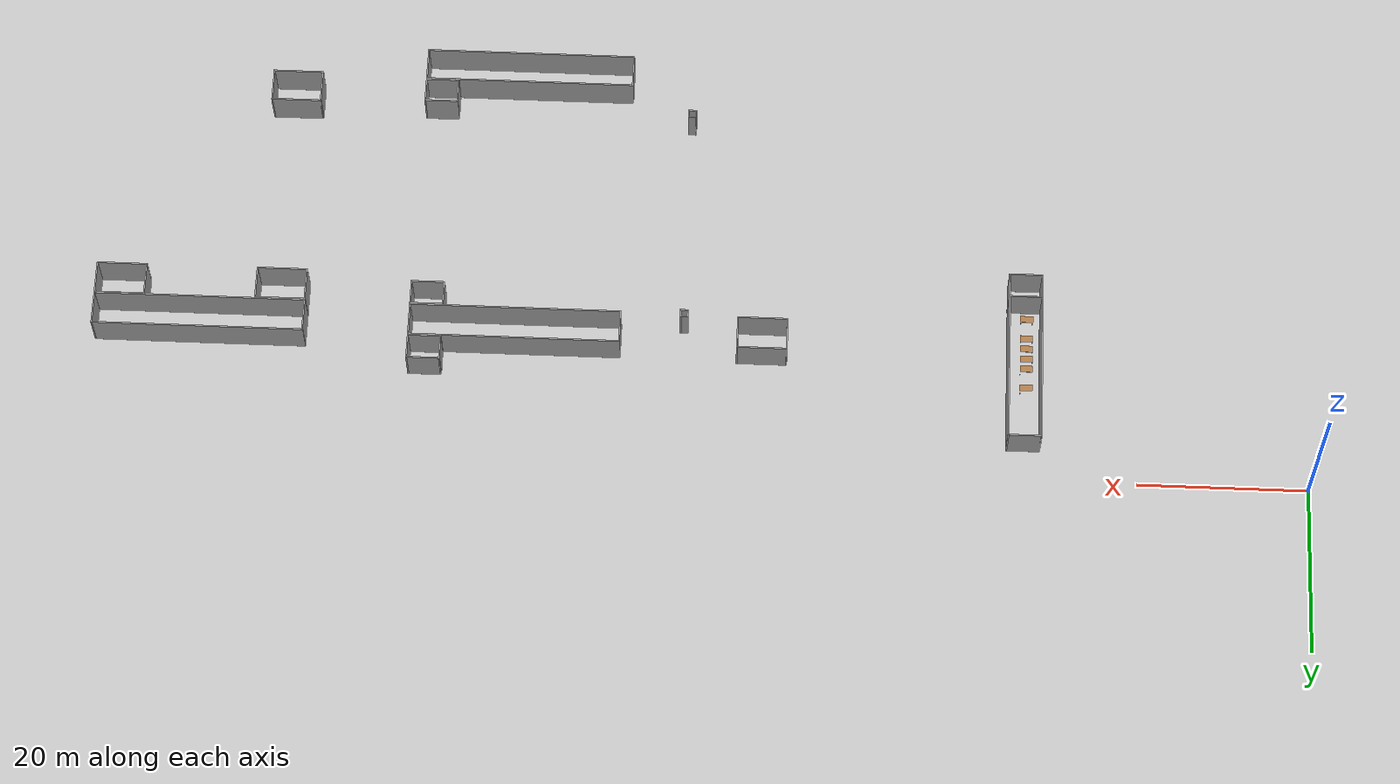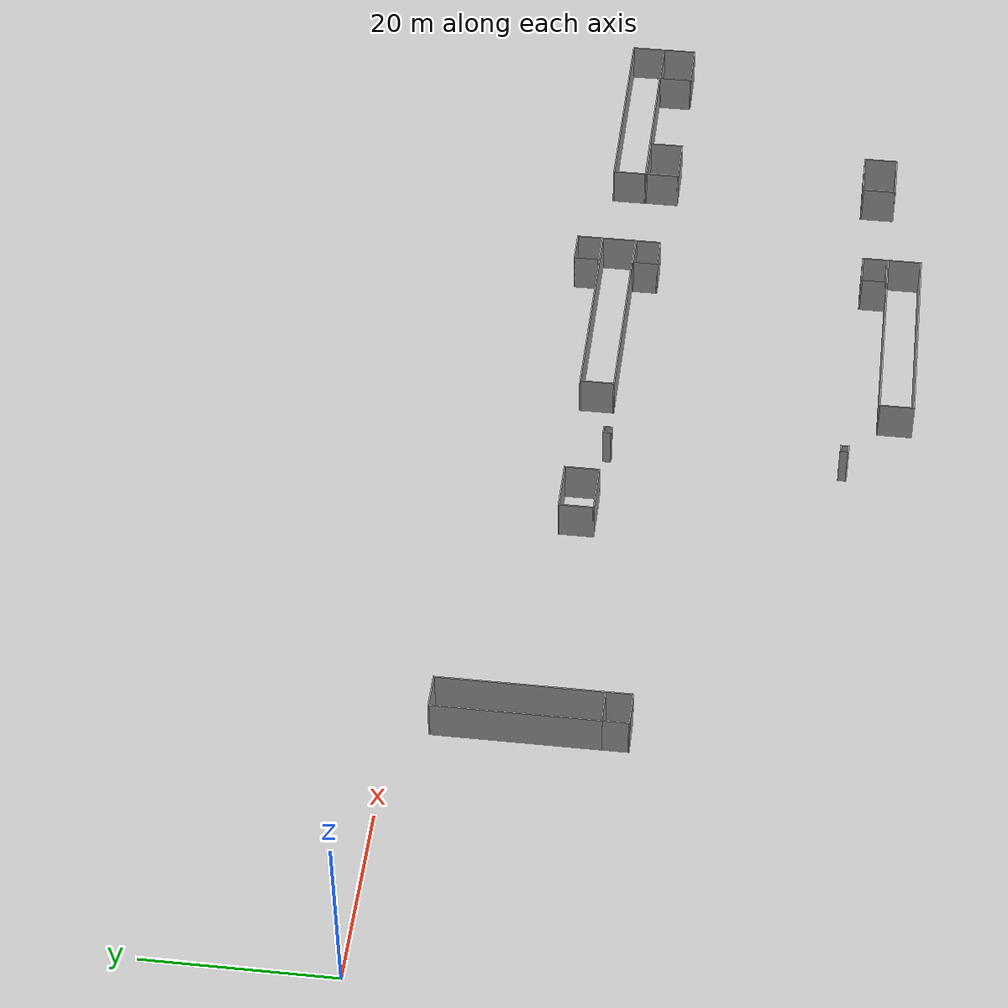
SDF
<sdf version="1.6">
 <world name="default">
  <model name="ground_plane">
   <static>1</static>
   <link name="link">
    <collision name="collision">
     <geometry><plane><normal>0 0 1</normal><size>320 320</size></plane></geometry>
     <surface>
      <contact><collide_bitmask>65535</collide_bitmask></contact>
      <friction><ode><mu>100</mu><mu2>50</mu2></ode></friction>
     </surface>
    </collision>
    <visual name="visual">
     <cast_shadows>0</cast_shadows>
     <geometry><plane><normal>0 0 1</normal><size>320 320</size></plane></geometry>
     <material>
      <script><uri>file://media/materials/scripts/gazebo.material</uri><name>Gazebo/Grey</name></script>
     </material>
    </visual>
   </link>
  </model>
  <model name="base3x4_25">
   <pose>33.3857 -23.2371 0 0 -0 0</pose>
   <link name="Wall_18">
    <collision name="Wall_18_Collision">
     <geometry><box><size>3 0.15 6.555</size></box></geometry>
     <pose>0 0 1.25 0 -0 0</pose>
    </collision>
    <visual name="Wall_18_Visual">
     <pose>0 0 1.25 0 -0 0</pose>
     <geometry><box><size>3 0.15 6.555</size></box></geometry>
     <material>
      <script><uri>file://media/materials/scripts/gazebo.material</uri><name>Gazebo/Grey</name></script>
      <ambient>1 1 1 1</ambient>
     </material>
     <meta><layer>0</layer></meta>
    </visual>
    <pose>-1.925 -0 0 0 -0 -1.5708</pose>
   </link>
   <link name="Wall_19">
    <collision name="Wall_19_Collision">
     <geometry><box><size>4 0.15 6.555</size></box></geometry>
     <pose>0 0 1.25 0 -0 0</pose>
    </collision>
    <visual name="Wall_19_Visual">
     <pose>0 0 1.25 0 -0 0</pose>
     <geometry><box><size>4 0.15 6.555</size></box></geometry>
     <material>
      <script><uri>file://media/materials/scripts/gazebo.material</uri><name>Gazebo/Grey</name></script>
      <ambient>1 1 1 1</ambient>
     </material>
     <meta><layer>0</layer></meta>
    </visual>
    <pose>-0 -1.425 0 0 -0 0</pose>
   </link>
   <link name="Wall_20">
    <collision name="Wall_20_Collision">
     <geometry><box><size>3 0.15 6.555</size></box></geometry>
     <pose>0 0 1.25 0 -0 0</pose>
    </collision>
    <visual name="Wall_20_Visual">
     <pose>0 0 1.25 0 -0 0</pose>
     <geometry><box><size>3 0.15 6.555</size></box></geometry>
     <material>
      <script><uri>file://media/materials/scripts/gazebo.material</uri><name>Gazebo/Grey</name></script>
      <ambient>1 1 1 1</ambient>
     </material>
     <meta><layer>0</layer></meta>
    </visual>
    <pose>1.925 -0 0 0 -0 1.5708</pose>
   </link>
   <link name="Wall_21">
    <collision name="Wall_21_Collision">
     <geometry><box><size>4 0.15 6.555</size></box></geometry>
     <pose>0 0 1.25 0 -0 0</pose>
    </collision>
    <visual name="Wall_21_Visual">
     <pose>0 0 1.25 0 -0 0</pose>
     <geometry><box><size>4 0.15 6.555</size></box></geometry>
     <material>
      <script><uri>file://media/materials/scripts/gazebo.material</uri><name>Gazebo/Grey</name></script>
      <ambient>1 1 1 1</ambient>
     </material>
     <meta><layer>0</layer></meta>
    </visual>
    <pose>-0 1.425 0 0 -0 3.14159</pose>
   </link>
   <static>1</static>
  </model>
  <model name="base18x4_5">
   <pose>33.3746 -12.8976 0 0 -0 0</pose>
   <link name="Wall_6">
    <collision name="Wall_6_Collision">
     <geometry><box><size>18 0.15 6.555</size></box></geometry>
     <pose>0 0 1.25 0 -0 0</pose>
    </collision>
    <visual name="Wall_6_Visual">
     <pose>0 0 1.25 0 -0 0</pose>
     <geometry><box><size>18 0.15 6.555</size></box></geometry>
     <material>
      <script><uri>file://media/materials/scripts/gazebo.material</uri><name>Gazebo/Grey</name></script>
      <ambient>1 1 1 1</ambient>
     </material>
     <meta><layer>0</layer></meta>
    </visual>
    <pose>-1.925 0 0 0 -0 -1.5708</pose>
   </link>
   <link name="Wall_7">
    <collision name="Wall_7_Collision">
     <geometry><box><size>4 0.15 6.555</size></box></geometry>
     <pose>0 0 1.25 0 -0 0</pose>
    </collision>
    <visual name="Wall_7_Visual">
     <pose>0 0 1.25 0 -0 0</pose>
     <geometry><box><size>4 0.15 6.555</size></box></geometry>
     <material>
      <script><uri>file://media/materials/scripts/gazebo.material</uri><name>Gazebo/Grey</name></script>
      <ambient>1 1 1 1</ambient>
     </material>
     <meta><layer>0</layer></meta>
    </visual>
    <pose>0 -8.925 0 0 -0 0</pose>
   </link>
   <link name="Wall_8">
    <collision name="Wall_8_Collision">
     <geometry><box><size>18 0.15 6.555</size></box></geometry>
     <pose>0 0 1.25 0 -0 0</pose>
    </collision>
    <visual name="Wall_8_Visual">
     <pose>0 0 1.25 0 -0 0</pose>
     <geometry><box><size>18 0.15 6.555</size></box></geometry>
     <material>
      <script><uri>file://media/materials/scripts/gazebo.material</uri><name>Gazebo/Grey</name></script>
      <ambient>1 1 1 1</ambient>
     </material>
     <meta><layer>0</layer></meta>
    </visual>
    <pose>1.925 0 0 0 -0 1.5708</pose>
   </link>
   <link name="Wall_9">
    <collision name="Wall_9_Collision">
     <geometry><box><size>4 0.15 6.555</size></box></geometry>
     <pose>0 0 1.25 0 -0 0</pose>
    </collision>
    <visual name="Wall_9_Visual">
     <pose>0 0 1.25 0 -0 0</pose>
     <geometry><box><size>4 0.15 6.555</size></box></geometry>
     <material>
      <script><uri>file://media/materials/scripts/gazebo.material</uri><name>Gazebo/Grey</name></script>
      <ambient>1 1 1 1</ambient>
     </material>
     <meta><layer>0</layer></meta>
    </visual>
    <pose>0 8.925 0 0 -0 3.14159</pose>
   </link>
   <static>1</static>
  </model>
  <model name="table">
   <static>1</static>
   <link name="link">
    <collision name="surface">
     <pose>0 0 1 0 -0 0</pose>
     <geometry><box><size>1.5 0.8 0.03</size></box></geometry>
     <surface><friction><ode><mu>0.6</mu><mu2>0.6</mu2></ode></friction></surface>
    </collision>
    <visual name="visual1">
     <pose>0 0 1 0 -0 0</pose>
     <geometry><box><size>1.5 0.8 0.03</size></box></geometry>
     <material>
      <script><uri>file://media/materials/scripts/gazebo.material</uri><name>Gazebo/Wood</name></script>
     </material>
    </visual>
    <collision name="front_left_leg">
     <pose>0.68 0.38 0.5 0 -0 0</pose>
     <geometry><cylinder><radius>0.02</radius><length>1</length></cylinder></geometry>
    </collision>
    <visual name="front_left_leg">
     <pose>0.68 0.38 0.5 0 -0 0</pose>
     <geometry><cylinder><radius>0.02</radius><length>1</length></cylinder></geometry>
     <material>
      <script><uri>file://media/materials/scripts/gazebo.material</uri><name>Gazebo/Grey</name></script>
     </material>
    </visual>
    <collision name="front_right_leg">
     <pose>0.68 -0.38 0.5 0 -0 0</pose>
     <geometry><cylinder><radius>0.02</radius><length>1</length></cylinder></geometry>
    </collision>
    <visual name="front_right_leg">
     <pose>0.68 -0.38 0.5 0 -0 0</pose>
     <geometry><cylinder><radius>0.02</radius><length>1</length></cylinder></geometry>
     <material>
      <script><uri>file://media/materials/scripts/gazebo.material</uri><name>Gazebo/Grey</name></script>
     </material>
    </visual>
    <collision name="back_right_leg">
     <pose>-0.68 -0.38 0.5 0 -0 0</pose>
     <geometry><cylinder><radius>0.02</radius><length>1</length></cylinder></geometry>
    </collision>
    <visual name="back_right_leg">
     <pose>-0.68 -0.38 0.5 0 -0 0</pose>
     <geometry><cylinder><radius>0.02</radius><length>1</length></cylinder></geometry>
     <material>
      <script><uri>file://media/materials/scripts/gazebo.material</uri><name>Gazebo/Grey</name></script>
     </material>
    </visual>
    <collision name="back_left_leg">
     <pose>-0.68 0.38 0.5 0 -0 0</pose>
     <geometry><cylinder><radius>0.02</radius><length>1</length></cylinder></geometry>
    </collision>
    <visual name="back_left_leg">
     <pose>-0.68 0.38 0.5 0 -0 0</pose>
     <geometry><cylinder><radius>0.02</radius><length>1</length></cylinder></geometry>
     <material>
      <script><uri>file://media/materials/scripts/gazebo.material</uri><name>Gazebo/Grey</name></script>
     </material>
    </visual>
   </link>
   <pose>33.0718 -20.4788 0 0 -0 0</pose>
  </model>
  <model name="table_1">
   <static>1</static>
   <link name="link">
    <collision name="surface">
     <pose>0 0 1 0 -0 0</pose>
     <geometry><box><size>1.5 0.8 0.03</size></box></geometry>
     <surface><friction><ode><mu>0.6</mu><mu2>0.6</mu2></ode></friction></surface>
    </collision>
    <visual name="visual1">
     <pose>0 0 1 0 -0 0</pose>
     <geometry><box><size>1.5 0.8 0.03</size></box></geometry>
     <material>
      <script><uri>file://media/materials/scripts/gazebo.material</uri><name>Gazebo/Wood</name></script>
     </material>
    </visual>
    <collision name="front_left_leg">
     <pose>0.68 0.38 0.5 0 -0 0</pose>
     <geometry><cylinder><radius>0.02</radius><length>1</length></cylinder></geometry>
    </collision>
    <visual name="front_left_leg">
     <pose>0.68 0.38 0.5 0 -0 0</pose>
     <geometry><cylinder><radius>0.02</radius><length>1</length></cylinder></geometry>
     <material>
      <script><uri>file://media/materials/scripts/gazebo.material</uri><name>Gazebo/Grey</name></script>
     </material>
    </visual>
    <collision name="front_right_leg">
     <pose>0.68 -0.38 0.5 0 -0 0</pose>
     <geometry><cylinder><radius>0.02</radius><length>1</length></cylinder></geometry>
    </collision>
    <visual name="front_right_leg">
     <pose>0.68 -0.38 0.5 0 -0 0</pose>
     <geometry><cylinder><radius>0.02</radius><length>1</length></cylinder></geometry>
     <material>
      <script><uri>file://media/materials/scripts/gazebo.material</uri><name>Gazebo/Grey</name></script>
     </material>
    </visual>
    <collision name="back_right_leg">
     <pose>-0.68 -0.38 0.5 0 -0 0</pose>
     <geometry><cylinder><radius>0.02</radius><length>1</length></cylinder></geometry>
    </collision>
    <visual name="back_right_leg">
     <pose>-0.68 -0.38 0.5 0 -0 0</pose>
     <geometry><cylinder><radius>0.02</radius><length>1</length></cylinder></geometry>
     <material>
      <script><uri>file://media/materials/scripts/gazebo.material</uri><name>Gazebo/Grey</name></script>
     </material>
    </visual>
    <collision name="back_left_leg">
     <pose>-0.68 0.38 0.5 0 -0 0</pose>
     <geometry><cylinder><radius>0.02</radius><length>1</length></cylinder></geometry>
    </collision>
    <visual name="back_left_leg">
     <pose>-0.68 0.38 0.5 0 -0 0</pose>
     <geometry><cylinder><radius>0.02</radius><length>1</length></cylinder></geometry>
     <material>
      <script><uri>file://media/materials/scripts/gazebo.material</uri><name>Gazebo/Grey</name></script>
     </material>
    </visual>
   </link>
   <pose>33.0783 -17.9476 0 0 -0 0</pose>
  </model>
  <model name="table_2">
   <static>1</static>
   <link name="link">
    <collision name="surface">
     <pose>0 0 1 0 -0 0</pose>
     <geometry><box><size>1.5 0.8 0.03</size></box></geometry>
     <surface><friction><ode><mu>0.6</mu><mu2>0.6</mu2></ode></friction></surface>
    </collision>
    <visual name="visual1">
     <pose>0 0 1 0 -0 0</pose>
     <geometry><box><size>1.5 0.8 0.03</size></box></geometry>
     <material>
      <script><uri>file://media/materials/scripts/gazebo.material</uri><name>Gazebo/Wood</name></script>
     </material>
    </visual>
    <collision name="front_left_leg">
     <pose>0.68 0.38 0.5 0 -0 0</pose>
     <geometry><cylinder><radius>0.02</radius><length>1</length></cylinder></geometry>
    </collision>
    <visual name="front_left_leg">
     <pose>0.68 0.38 0.5 0 -0 0</pose>
     <geometry><cylinder><radius>0.02</radius><length>1</length></cylinder></geometry>
     <material>
      <script><uri>file://media/materials/scripts/gazebo.material</uri><name>Gazebo/Grey</name></script>
     </material>
    </visual>
    <collision name="front_right_leg">
     <pose>0.68 -0.38 0.5 0 -0 0</pose>
     <geometry><cylinder><radius>0.02</radius><length>1</length></cylinder></geometry>
    </collision>
    <visual name="front_right_leg">
     <pose>0.68 -0.38 0.5 0 -0 0</pose>
     <geometry><cylinder><radius>0.02</radius><length>1</length></cylinder></geometry>
     <material>
      <script><uri>file://media/materials/scripts/gazebo.material</uri><name>Gazebo/Grey</name></script>
     </material>
    </visual>
    <collision name="back_right_leg">
     <pose>-0.68 -0.38 0.5 0 -0 0</pose>
     <geometry><cylinder><radius>0.02</radius><length>1</length></cylinder></geometry>
    </collision>
    <visual name="back_right_leg">
     <pose>-0.68 -0.38 0.5 0 -0 0</pose>
     <geometry><cylinder><radius>0.02</radius><length>1</length></cylinder></geometry>
     <material>
      <script><uri>file://media/materials/scripts/gazebo.material</uri><name>Gazebo/Grey</name></script>
     </material>
    </visual>
    <collision name="back_left_leg">
     <pose>-0.68 0.38 0.5 0 -0 0</pose>
     <geometry><cylinder><radius>0.02</radius><length>1</length></cylinder></geometry>
    </collision>
    <visual name="back_left_leg">
     <pose>-0.68 0.38 0.5 0 -0 0</pose>
     <geometry><cylinder><radius>0.02</radius><length>1</length></cylinder></geometry>
     <material>
      <script><uri>file://media/materials/scripts/gazebo.material</uri><name>Gazebo/Grey</name></script>
     </material>
    </visual>
   </link>
   <pose>33.0811 -16.621 0 0 -0 0</pose>
  </model>
  <model name="table_3">
   <static>1</static>
   <link name="link">
    <collision name="surface">
     <pose>0 0 1 0 -0 0</pose>
     <geometry><box><size>1.5 0.8 0.03</size></box></geometry>
     <surface><friction><ode><mu>0.6</mu><mu2>0.6</mu2></ode></friction></surface>
    </collision>
    <visual name="visual1">
     <pose>0 0 1 0 -0 0</pose>
     <geometry><box><size>1.5 0.8 0.03</size></box></geometry>
     <material>
      <script><uri>file://media/materials/scripts/gazebo.material</uri><name>Gazebo/Wood</name></script>
     </material>
    </visual>
    <collision name="front_left_leg">
     <pose>0.68 0.38 0.5 0 -0 0</pose>
     <geometry><cylinder><radius>0.02</radius><length>1</length></cylinder></geometry>
    </collision>
    <visual name="front_left_leg">
     <pose>0.68 0.38 0.5 0 -0 0</pose>
     <geometry><cylinder><radius>0.02</radius><length>1</length></cylinder></geometry>
     <material>
      <script><uri>file://media/materials/scripts/gazebo.material</uri><name>Gazebo/Grey</name></script>
     </material>
    </visual>
    <collision name="front_right_leg">
     <pose>0.68 -0.38 0.5 0 -0 0</pose>
     <geometry><cylinder><radius>0.02</radius><length>1</length></cylinder></geometry>
    </collision>
    <visual name="front_right_leg">
     <pose>0.68 -0.38 0.5 0 -0 0</pose>
     <geometry><cylinder><radius>0.02</radius><length>1</length></cylinder></geometry>
     <material>
      <script><uri>file://media/materials/scripts/gazebo.material</uri><name>Gazebo/Grey</name></script>
     </material>
    </visual>
    <collision name="back_right_leg">
     <pose>-0.68 -0.38 0.5 0 -0 0</pose>
     <geometry><cylinder><radius>0.02</radius><length>1</length></cylinder></geometry>
    </collision>
    <visual name="back_right_leg">
     <pose>-0.68 -0.38 0.5 0 -0 0</pose>
     <geometry><cylinder><radius>0.02</radius><length>1</length></cylinder></geometry>
     <material>
      <script><uri>file://media/materials/scripts/gazebo.material</uri><name>Gazebo/Grey</name></script>
     </material>
    </visual>
    <collision name="back_left_leg">
     <pose>-0.68 0.38 0.5 0 -0 0</pose>
     <geometry><cylinder><radius>0.02</radius><length>1</length></cylinder></geometry>
    </collision>
    <visual name="back_left_leg">
     <pose>-0.68 0.38 0.5 0 -0 0</pose>
     <geometry><cylinder><radius>0.02</radius><length>1</length></cylinder></geometry>
     <material>
      <script><uri>file://media/materials/scripts/gazebo.material</uri><name>Gazebo/Grey</name></script>
     </material>
    </visual>
   </link>
   <pose>33.0661 -15.3115 0 0 -0 0</pose>
  </model>
  <model name="table_4">
   <static>1</static>
   <link name="link">
    <collision name="surface">
     <pose>0 0 1 0 -0 0</pose>
     <geometry><box><size>1.5 0.8 0.03</size></box></geometry>
     <surface><friction><ode><mu>0.6</mu><mu2>0.6</mu2></ode></friction></surface>
    </collision>
    <visual name="visual1">
     <pose>0 0 1 0 -0 0</pose>
     <geometry><box><size>1.5 0.8 0.03</size></box></geometry>
     <material>
      <script><uri>file://media/materials/scripts/gazebo.material</uri><name>Gazebo/Wood</name></script>
     </material>
    </visual>
    <collision name="front_left_leg">
     <pose>0.68 0.38 0.5 0 -0 0</pose>
     <geometry><cylinder><radius>0.02</radius><length>1</length></cylinder></geometry>
    </collision>
    <visual name="front_left_leg">
     <pose>0.68 0.38 0.5 0 -0 0</pose>
     <geometry><cylinder><radius>0.02</radius><length>1</length></cylinder></geometry>
     <material>
      <script><uri>file://media/materials/scripts/gazebo.material</uri><name>Gazebo/Grey</name></script>
     </material>
    </visual>
    <collision name="front_right_leg">
     <pose>0.68 -0.38 0.5 0 -0 0</pose>
     <geometry><cylinder><radius>0.02</radius><length>1</length></cylinder></geometry>
    </collision>
    <visual name="front_right_leg">
     <pose>0.68 -0.38 0.5 0 -0 0</pose>
     <geometry><cylinder><radius>0.02</radius><length>1</length></cylinder></geometry>
     <material>
      <script><uri>file://media/materials/scripts/gazebo.material</uri><name>Gazebo/Grey</name></script>
     </material>
    </visual>
    <collision name="back_right_leg">
     <pose>-0.68 -0.38 0.5 0 -0 0</pose>
     <geometry><cylinder><radius>0.02</radius><length>1</length></cylinder></geometry>
    </collision>
    <visual name="back_right_leg">
     <pose>-0.68 -0.38 0.5 0 -0 0</pose>
     <geometry><cylinder><radius>0.02</radius><length>1</length></cylinder></geometry>
     <material>
      <script><uri>file://media/materials/scripts/gazebo.material</uri><name>Gazebo/Grey</name></script>
     </material>
    </visual>
    <collision name="back_left_leg">
     <pose>-0.68 0.38 0.5 0 -0 0</pose>
     <geometry><cylinder><radius>0.02</radius><length>1</length></cylinder></geometry>
    </collision>
    <visual name="back_left_leg">
     <pose>-0.68 0.38 0.5 0 -0 0</pose>
     <geometry><cylinder><radius>0.02</radius><length>1</length></cylinder></geometry>
     <material>
      <script><uri>file://media/materials/scripts/gazebo.material</uri><name>Gazebo/Grey</name></script>
     </material>
    </visual>
   </link>
   <pose>33.068 -14.0197 0 0 -0 0</pose>
  </model>
  <model name="table_6">
   <static>1</static>
   <link name="link">
    <collision name="surface">
     <pose>0 0 1 0 -0 0</pose>
     <geometry><box><size>1.5 0.8 0.03</size></box></geometry>
     <surface><friction><ode><mu>0.6</mu><mu2>0.6</mu2></ode></friction></surface>
    </collision>
    <visual name="visual1">
     <pose>0 0 1 0 -0 0</pose>
     <geometry><box><size>1.5 0.8 0.03</size></box></geometry>
     <material>
      <script><uri>file://media/materials/scripts/gazebo.material</uri><name>Gazebo/Wood</name></script>
     </material>
    </visual>
    <collision name="front_left_leg">
     <pose>0.68 0.38 0.5 0 -0 0</pose>
     <geometry><cylinder><radius>0.02</radius><length>1</length></cylinder></geometry>
    </collision>
    <visual name="front_left_leg">
     <pose>0.68 0.38 0.5 0 -0 0</pose>
     <geometry><cylinder><radius>0.02</radius><length>1</length></cylinder></geometry>
     <material>
      <script><uri>file://media/materials/scripts/gazebo.material</uri><name>Gazebo/Grey</name></script>
     </material>
    </visual>
    <collision name="front_right_leg">
     <pose>0.68 -0.38 0.5 0 -0 0</pose>
     <geometry><cylinder><radius>0.02</radius><length>1</length></cylinder></geometry>
    </collision>
    <visual name="front_right_leg">
     <pose>0.68 -0.38 0.5 0 -0 0</pose>
     <geometry><cylinder><radius>0.02</radius><length>1</length></cylinder></geometry>
     <material>
      <script><uri>file://media/materials/scripts/gazebo.material</uri><name>Gazebo/Grey</name></script>
     </material>
    </visual>
    <collision name="back_right_leg">
     <pose>-0.68 -0.38 0.5 0 -0 0</pose>
     <geometry><cylinder><radius>0.02</radius><length>1</length></cylinder></geometry>
    </collision>
    <visual name="back_right_leg">
     <pose>-0.68 -0.38 0.5 0 -0 0</pose>
     <geometry><cylinder><radius>0.02</radius><length>1</length></cylinder></geometry>
     <material>
      <script><uri>file://media/materials/scripts/gazebo.material</uri><name>Gazebo/Grey</name></script>
     </material>
    </visual>
    <collision name="back_left_leg">
     <pose>-0.68 0.38 0.5 0 -0 0</pose>
     <geometry><cylinder><radius>0.02</radius><length>1</length></cylinder></geometry>
    </collision>
    <visual name="back_left_leg">
     <pose>-0.68 0.38 0.5 0 -0 0</pose>
     <geometry><cylinder><radius>0.02</radius><length>1</length></cylinder></geometry>
     <material>
      <script><uri>file://media/materials/scripts/gazebo.material</uri><name>Gazebo/Grey</name></script>
     </material>
    </visual>
   </link>
   <pose>33.0586 -11.5759 0 0 -0 0</pose>
  </model>
  <model name="base4x25_6">
   <pose>130.864 -16.1277 0 0 -0 0</pose>
   <link name="Wall_11">
    <collision name="Wall_11_Collision">
     <geometry><box><size>4 0.15 6.555</size></box></geometry>
     <pose>0 0 1.25 0 -0 0</pose>
    </collision>
    <visual name="Wall_11_Visual">
     <pose>0 0 1.25 0 -0 0</pose>
     <geometry><box><size>4 0.15 6.555</size></box></geometry>
     <material>
      <script><uri>file://media/materials/scripts/gazebo.material</uri><name>Gazebo/Grey</name></script>
      <ambient>1 1 1 1</ambient>
     </material>
     <meta><layer>0</layer></meta>
    </visual>
    <pose>-12.425 0 0 0 -0 -1.5708</pose>
   </link>
   <link name="Wall_12">
    <collision name="Wall_12_Collision">
     <geometry><box><size>25 0.15 6.555</size></box></geometry>
     <pose>0 0 1.25 0 -0 0</pose>
    </collision>
    <visual name="Wall_12_Visual">
     <pose>0 0 1.25 0 -0 0</pose>
     <geometry><box><size>25 0.15 6.555</size></box></geometry>
     <material>
      <script><uri>file://media/materials/scripts/gazebo.material</uri><name>Gazebo/Grey</name></script>
      <ambient>1 1 1 1</ambient>
     </material>
     <meta><layer>0</layer></meta>
    </visual>
    <pose>0 -1.925 0 0 -0 0</pose>
   </link>
   <link name="Wall_13">
    <collision name="Wall_13_Collision">
     <geometry><box><size>4 0.15 6.555</size></box></geometry>
     <pose>0 0 1.25 0 -0 0</pose>
    </collision>
    <visual name="Wall_13_Visual">
     <pose>0 0 1.25 0 -0 0</pose>
     <geometry><box><size>4 0.15 6.555</size></box></geometry>
     <material>
      <script><uri>file://media/materials/scripts/gazebo.material</uri><name>Gazebo/Grey</name></script>
      <ambient>1 1 1 1</ambient>
     </material>
     <meta><layer>0</layer></meta>
    </visual>
    <pose>12.425 0 0 0 -0 1.5708</pose>
   </link>
   <link name="Wall_14">
    <collision name="Wall_14_Collision">
     <geometry><box><size>25 0.15 6.555</size></box></geometry>
     <pose>0 0 1.25 0 -0 0</pose>
    </collision>
    <visual name="Wall_14_Visual">
     <pose>0 0 1.25 0 -0 0</pose>
     <geometry><box><size>25 0.15 6.555</size></box></geometry>
     <material>
      <script><uri>file://media/materials/scripts/gazebo.material</uri><name>Gazebo/Grey</name></script>
      <ambient>1 1 1 1</ambient>
     </material>
     <meta><layer>0</layer></meta>
    </visual>
    <pose>0 1.925 0 0 -0 3.14159</pose>
   </link>
   <static>1</static>
  </model>
  <model name="base4x25_13">
   <pose>93.5449 -16.0739 0 0 -0 0</pose>
   <link name="Wall_11">
    <collision name="Wall_11_Collision">
     <geometry><box><size>4 0.15 6.555</size></box></geometry>
     <pose>0 0 1.25 0 -0 0</pose>
    </collision>
    <visual name="Wall_11_Visual">
     <pose>0 0 1.25 0 -0 0</pose>
     <geometry><box><size>4 0.15 6.555</size></box></geometry>
     <material>
      <script><uri>file://media/materials/scripts/gazebo.material</uri><name>Gazebo/Grey</name></script>
      <ambient>1 1 1 1</ambient>
     </material>
     <meta><layer>0</layer></meta>
    </visual>
    <pose>-12.425 0 0 0 -0 -1.5708</pose>
   </link>
   <link name="Wall_12">
    <collision name="Wall_12_Collision">
     <geometry><box><size>25 0.15 6.555</size></box></geometry>
     <pose>0 0 1.25 0 -0 0</pose>
    </collision>
    <visual name="Wall_12_Visual">
     <pose>0 0 1.25 0 -0 0</pose>
     <geometry><box><size>25 0.15 6.555</size></box></geometry>
     <material>
      <script><uri>file://media/materials/scripts/gazebo.material</uri><name>Gazebo/Grey</name></script>
      <ambient>1 1 1 1</ambient>
     </material>
     <meta><layer>0</layer></meta>
    </visual>
    <pose>0 -1.925 0 0 -0 0</pose>
   </link>
   <link name="Wall_13">
    <collision name="Wall_13_Collision">
     <geometry><box><size>4 0.15 6.555</size></box></geometry>
     <pose>0 0 1.25 0 -0 0</pose>
    </collision>
    <visual name="Wall_13_Visual">
     <pose>0 0 1.25 0 -0 0</pose>
     <geometry><box><size>4 0.15 6.555</size></box></geometry>
     <material>
      <script><uri>file://media/materials/scripts/gazebo.material</uri><name>Gazebo/Grey</name></script>
      <ambient>1 1 1 1</ambient>
     </material>
     <meta><layer>0</layer></meta>
    </visual>
    <pose>12.425 0 0 0 -0 1.5708</pose>
   </link>
   <link name="Wall_14">
    <collision name="Wall_14_Collision">
     <geometry><box><size>25 0.15 6.555</size></box></geometry>
     <pose>0 0 1.25 0 -0 0</pose>
    </collision>
    <visual name="Wall_14_Visual">
     <pose>0 0 1.25 0 -0 0</pose>
     <geometry><box><size>25 0.15 6.555</size></box></geometry>
     <material>
      <script><uri>file://media/materials/scripts/gazebo.material</uri><name>Gazebo/Grey</name></script>
      <ambient>1 1 1 1</ambient>
     </material>
     <meta><layer>0</layer></meta>
    </visual>
    <pose>0 1.925 0 0 -0 3.14159</pose>
   </link>
   <static>1</static>
  </model>
  <model name="base4x25_14">
   <pose>93.4868 -50.0545 0 0 -0 0</pose>
   <link name="Wall_11">
    <collision name="Wall_11_Collision">
     <geometry><box><size>4 0.15 6.555</size></box></geometry>
     <pose>0 0 1.25 0 -0 0</pose>
    </collision>
    <visual name="Wall_11_Visual">
     <pose>0 0 1.25 0 -0 0</pose>
     <geometry><box><size>4 0.15 6.555</size></box></geometry>
     <material>
      <script><uri>file://media/materials/scripts/gazebo.material</uri><name>Gazebo/Grey</name></script>
      <ambient>1 1 1 1</ambient>
     </material>
     <meta><layer>0</layer></meta>
    </visual>
    <pose>-12.425 0 0 0 -0 -1.5708</pose>
   </link>
   <link name="Wall_12">
    <collision name="Wall_12_Collision">
     <geometry><box><size>25 0.15 6.555</size></box></geometry>
     <pose>0 0 1.25 0 -0 0</pose>
    </collision>
    <visual name="Wall_12_Visual">
     <pose>0 0 1.25 0 -0 0</pose>
     <geometry><box><size>25 0.15 6.555</size></box></geometry>
     <material>
      <script><uri>file://media/materials/scripts/gazebo.material</uri><name>Gazebo/Grey</name></script>
      <ambient>1 1 1 1</ambient>
     </material>
     <meta><layer>0</layer></meta>
    </visual>
    <pose>0 -1.925 0 0 -0 0</pose>
   </link>
   <link name="Wall_13">
    <collision name="Wall_13_Collision">
     <geometry><box><size>4 0.15 6.555</size></box></geometry>
     <pose>0 0 1.25 0 -0 0</pose>
    </collision>
    <visual name="Wall_13_Visual">
     <pose>0 0 1.25 0 -0 0</pose>
     <geometry><box><size>4 0.15 6.555</size></box></geometry>
     <material>
      <script><uri>file://media/materials/scripts/gazebo.material</uri><name>Gazebo/Grey</name></script>
      <ambient>1 1 1 1</ambient>
     </material>
     <meta><layer>0</layer></meta>
    </visual>
    <pose>12.425 0 0 0 -0 1.5708</pose>
   </link>
   <link name="Wall_14">
    <collision name="Wall_14_Collision">
     <geometry><box><size>25 0.15 6.555</size></box></geometry>
     <pose>0 0 1.25 0 -0 0</pose>
    </collision>
    <visual name="Wall_14_Visual">
     <pose>0 0 1.25 0 -0 0</pose>
     <geometry><box><size>25 0.15 6.555</size></box></geometry>
     <material>
      <script><uri>file://media/materials/scripts/gazebo.material</uri><name>Gazebo/Grey</name></script>
      <ambient>1 1 1 1</ambient>
     </material>
     <meta><layer>0</layer></meta>
    </visual>
    <pose>0 1.925 0 0 -0 3.14159</pose>
   </link>
   <static>1</static>
  </model>
  <model name="base4x6_7_clone_3">
   <pose>64.335 -15.8734 0 0 -0 0</pose>
   <link name="Wall_23">
    <collision name="Wall_23_Collision">
     <geometry><box><size>4 0.15 6.555</size></box></geometry>
     <pose>0 0 1.25 0 -0 0</pose>
    </collision>
    <visual name="Wall_23_Visual">
     <pose>0 0 1.25 0 -0 0</pose>
     <geometry><box><size>4 0.15 6.555</size></box></geometry>
     <material>
      <script><uri>file://media/materials/scripts/gazebo.material</uri><name>Gazebo/Grey</name></script>
      <ambient>1 1 1 1</ambient>
     </material>
     <meta><layer>0</layer></meta>
    </visual>
    <pose>-2.925 0 0 0 -0 -1.5708</pose>
   </link>
   <link name="Wall_24">
    <collision name="Wall_24_Collision">
     <geometry><box><size>6 0.15 6.555</size></box></geometry>
     <pose>0 0 1.25 0 -0 0</pose>
    </collision>
    <visual name="Wall_24_Visual">
     <pose>0 0 1.25 0 -0 0</pose>
     <geometry><box><size>6 0.15 6.555</size></box></geometry>
     <material>
      <script><uri>file://media/materials/scripts/gazebo.material</uri><name>Gazebo/Grey</name></script>
      <ambient>1 1 1 1</ambient>
     </material>
     <meta><layer>0</layer></meta>
    </visual>
    <pose>-0 -1.925 0 0 -0 0</pose>
   </link>
   <link name="Wall_25">
    <collision name="Wall_25_Collision">
     <geometry><box><size>4 0.15 6.555</size></box></geometry>
     <pose>0 0 1.25 0 -0 0</pose>
    </collision>
    <visual name="Wall_25_Visual">
     <pose>0 0 1.25 0 -0 0</pose>
     <geometry><box><size>4 0.15 6.555</size></box></geometry>
     <material>
      <script><uri>file://media/materials/scripts/gazebo.material</uri><name>Gazebo/Grey</name></script>
      <ambient>1 1 1 1</ambient>
     </material>
     <meta><layer>0</layer></meta>
    </visual>
    <pose>2.925 0 0 0 -0 1.5708</pose>
   </link>
   <link name="Wall_26">
    <collision name="Wall_26_Collision">
     <geometry><box><size>6 0.15 6.555</size></box></geometry>
     <pose>0 0 1.25 0 -0 0</pose>
    </collision>
    <visual name="Wall_26_Visual">
     <pose>0 0 1.25 0 -0 0</pose>
     <geometry><box><size>6 0.15 6.555</size></box></geometry>
     <material>
      <script><uri>file://media/materials/scripts/gazebo.material</uri><name>Gazebo/Grey</name></script>
      <ambient>1 1 1 1</ambient>
     </material>
     <meta><layer>0</layer></meta>
    </visual>
    <pose>-0 1.925 0 0 -0 3.14159</pose>
   </link>
   <static>1</static>
  </model>
  <model name="box_1mx1m_clone_6">
   <pose>73.6131 -18.0544 0 0 -0 0</pose>
   <link name="Wall_10">
    <collision name="Wall_10_Collision">
     <geometry><box><size>1 0.15 6.555</size></box></geometry>
     <pose>0 0 1.25 0 -0 0</pose>
    </collision>
    <visual name="Wall_10_Visual">
     <pose>0 0 1.25 0 -0 0</pose>
     <geometry><box><size>1 0.15 6.555</size></box></geometry>
     <material>
      <script><uri>file://media/materials/scripts/gazebo.material</uri><name>Gazebo/Grey</name></script>
      <ambient>1 1 1 1</ambient>
     </material>
     <meta><layer>0</layer></meta>
    </visual>
    <pose>-0.425 0 0 0 -0 -1.5708</pose>
   </link>
   <link name="Wall_11">
    <collision name="Wall_11_Collision">
     <geometry><box><size>1 0.15 6.555</size></box></geometry>
     <pose>0 0 1.25 0 -0 0</pose>
    </collision>
    <visual name="Wall_11_Visual">
     <pose>0 0 1.25 0 -0 0</pose>
     <geometry><box><size>1 0.15 6.555</size></box></geometry>
     <material>
      <script><uri>file://media/materials/scripts/gazebo.material</uri><name>Gazebo/Grey</name></script>
      <ambient>1 1 1 1</ambient>
     </material>
     <meta><layer>0</layer></meta>
    </visual>
    <pose>0 -0.425 0 0 -0 0</pose>
   </link>
   <link name="Wall_12">
    <collision name="Wall_12_Collision">
     <geometry><box><size>1 0.15 6.555</size></box></geometry>
     <pose>0 0 1.25 0 -0 0</pose>
    </collision>
    <visual name="Wall_12_Visual">
     <pose>0 0 1.25 0 -0 0</pose>
     <geometry><box><size>1 0.15 6.555</size></box></geometry>
     <material>
      <script><uri>file://media/materials/scripts/gazebo.material</uri><name>Gazebo/Grey</name></script>
      <ambient>1 1 1 1</ambient>
     </material>
     <meta><layer>0</layer></meta>
    </visual>
    <pose>0.425 0 0 0 -0 1.5708</pose>
   </link>
   <link name="Wall_13">
    <collision name="Wall_13_Collision">
     <geometry><box><size>1 0.15 6.555</size></box></geometry>
     <pose>0 0 1.25 0 -0 0</pose>
    </collision>
    <visual name="Wall_13_Visual">
     <pose>0 0 1.25 0 -0 0</pose>
     <geometry><box><size>1 0.15 6.555</size></box></geometry>
     <material>
      <script><uri>file://media/materials/scripts/gazebo.material</uri><name>Gazebo/Grey</name></script>
      <ambient>1 1 1 1</ambient>
     </material>
     <meta><layer>0</layer></meta>
    </visual>
    <pose>0 0.425 0 0 -0 3.14159</pose>
   </link>
   <static>1</static>
  </model>
  <model name="box_1mx1m_clone_7">
   <pose>73.6905 -44.5319 0 0 -0 0</pose>
   <link name="Wall_10">
    <collision name="Wall_10_Collision">
     <geometry><box><size>1 0.15 6.555</size></box></geometry>
     <pose>0 0 1.25 0 -0 0</pose>
    </collision>
    <visual name="Wall_10_Visual">
     <pose>0 0 1.25 0 -0 0</pose>
     <geometry><box><size>1 0.15 6.555</size></box></geometry>
     <material>
      <script><uri>file://media/materials/scripts/gazebo.material</uri><name>Gazebo/Grey</name></script>
      <ambient>1 1 1 1</ambient>
     </material>
     <meta><layer>0</layer></meta>
    </visual>
    <pose>-0.425 0 0 0 -0 -1.5708</pose>
   </link>
   <link name="Wall_11">
    <collision name="Wall_11_Collision">
     <geometry><box><size>1 0.15 6.555</size></box></geometry>
     <pose>0 0 1.25 0 -0 0</pose>
    </collision>
    <visual name="Wall_11_Visual">
     <pose>0 0 1.25 0 -0 0</pose>
     <geometry><box><size>1 0.15 6.555</size></box></geometry>
     <material>
      <script><uri>file://media/materials/scripts/gazebo.material</uri><name>Gazebo/Grey</name></script>
      <ambient>1 1 1 1</ambient>
     </material>
     <meta><layer>0</layer></meta>
    </visual>
    <pose>0 -0.425 0 0 -0 0</pose>
   </link>
   <link name="Wall_12">
    <collision name="Wall_12_Collision">
     <geometry><box><size>1 0.15 6.555</size></box></geometry>
     <pose>0 0 1.25 0 -0 0</pose>
    </collision>
    <visual name="Wall_12_Visual">
     <pose>0 0 1.25 0 -0 0</pose>
     <geometry><box><size>1 0.15 6.555</size></box></geometry>
     <material>
      <script><uri>file://media/materials/scripts/gazebo.material</uri><name>Gazebo/Grey</name></script>
      <ambient>1 1 1 1</ambient>
     </material>
     <meta><layer>0</layer></meta>
    </visual>
    <pose>0.425 0 0 0 -0 1.5708</pose>
   </link>
   <link name="Wall_13">
    <collision name="Wall_13_Collision">
     <geometry><box><size>1 0.15 6.555</size></box></geometry>
     <pose>0 0 1.25 0 -0 0</pose>
    </collision>
    <visual name="Wall_13_Visual">
     <pose>0 0 1.25 0 -0 0</pose>
     <geometry><box><size>1 0.15 6.555</size></box></geometry>
     <material>
      <script><uri>file://media/materials/scripts/gazebo.material</uri><name>Gazebo/Grey</name></script>
      <ambient>1 1 1 1</ambient>
     </material>
     <meta><layer>0</layer></meta>
    </visual>
    <pose>0 0.425 0 0 -0 3.14159</pose>
   </link>
   <static>1</static>
  </model>
  <model name="base4x6_13_clone_3">
   <pose>140.368 -20.0555 0 0 -0 0</pose>
   <link name="Wall_23">
    <collision name="Wall_23_Collision">
     <geometry><box><size>4 0.15 6.555</size></box></geometry>
     <pose>0 0 1.25 0 -0 0</pose>
    </collision>
    <visual name="Wall_23_Visual">
     <pose>0 0 1.25 0 -0 0</pose>
     <geometry><box><size>4 0.15 6.555</size></box></geometry>
     <material>
      <script><uri>file://media/materials/scripts/gazebo.material</uri><name>Gazebo/Grey</name></script>
      <ambient>1 1 1 1</ambient>
     </material>
     <meta><layer>0</layer></meta>
    </visual>
    <pose>-2.925 0 0 0 -0 -1.5708</pose>
   </link>
   <link name="Wall_24">
    <collision name="Wall_24_Collision">
     <geometry><box><size>6 0.15 6.555</size></box></geometry>
     <pose>0 0 1.25 0 -0 0</pose>
    </collision>
    <visual name="Wall_24_Visual">
     <pose>0 0 1.25 0 -0 0</pose>
     <geometry><box><size>6 0.15 6.555</size></box></geometry>
     <material>
      <script><uri>file://media/materials/scripts/gazebo.material</uri><name>Gazebo/Grey</name></script>
      <ambient>1 1 1 1</ambient>
     </material>
     <meta><layer>0</layer></meta>
    </visual>
    <pose>-0 -1.925 0 0 -0 0</pose>
   </link>
   <link name="Wall_25">
    <collision name="Wall_25_Collision">
     <geometry><box><size>4 0.15 6.555</size></box></geometry>
     <pose>0 0 1.25 0 -0 0</pose>
    </collision>
    <visual name="Wall_25_Visual">
     <pose>0 0 1.25 0 -0 0</pose>
     <geometry><box><size>4 0.15 6.555</size></box></geometry>
     <material>
      <script><uri>file://media/materials/scripts/gazebo.material</uri><name>Gazebo/Grey</name></script>
      <ambient>1 1 1 1</ambient>
     </material>
     <meta><layer>0</layer></meta>
    </visual>
    <pose>2.925 0 0 0 -0 1.5708</pose>
   </link>
   <link name="Wall_26">
    <collision name="Wall_26_Collision">
     <geometry><box><size>6 0.15 6.555</size></box></geometry>
     <pose>0 0 1.25 0 -0 0</pose>
    </collision>
    <visual name="Wall_26_Visual">
     <pose>0 0 1.25 0 -0 0</pose>
     <geometry><box><size>6 0.15 6.555</size></box></geometry>
     <material>
      <script><uri>file://media/materials/scripts/gazebo.material</uri><name>Gazebo/Grey</name></script>
      <ambient>1 1 1 1</ambient>
     </material>
     <meta><layer>0</layer></meta>
    </visual>
    <pose>-0 1.925 0 0 -0 3.14159</pose>
   </link>
   <static>1</static>
  </model>
  <model name="base4x6_13_clone_9">
   <pose>121.444 -46.5251 0 0 -0 0</pose>
   <link name="Wall_23">
    <collision name="Wall_23_Collision">
     <geometry><box><size>4 0.15 6.555</size></box></geometry>
     <pose>0 0 1.25 0 -0 0</pose>
    </collision>
    <visual name="Wall_23_Visual">
     <pose>0 0 1.25 0 -0 0</pose>
     <geometry><box><size>4 0.15 6.555</size></box></geometry>
     <material>
      <script><uri>file://media/materials/scripts/gazebo.material</uri><name>Gazebo/Grey</name></script>
      <ambient>1 1 1 1</ambient>
     </material>
     <meta><layer>0</layer></meta>
    </visual>
    <pose>-2.925 0 0 0 -0 -1.5708</pose>
   </link>
   <link name="Wall_24">
    <collision name="Wall_24_Collision">
     <geometry><box><size>6 0.15 6.555</size></box></geometry>
     <pose>0 0 1.25 0 -0 0</pose>
    </collision>
    <visual name="Wall_24_Visual">
     <pose>0 0 1.25 0 -0 0</pose>
     <geometry><box><size>6 0.15 6.555</size></box></geometry>
     <material>
      <script><uri>file://media/materials/scripts/gazebo.material</uri><name>Gazebo/Grey</name></script>
      <ambient>1 1 1 1</ambient>
     </material>
     <meta><layer>0</layer></meta>
    </visual>
    <pose>-0 -1.925 0 0 -0 0</pose>
   </link>
   <link name="Wall_25">
    <collision name="Wall_25_Collision">
     <geometry><box><size>4 0.15 6.555</size></box></geometry>
     <pose>0 0 1.25 0 -0 0</pose>
    </collision>
    <visual name="Wall_25_Visual">
     <pose>0 0 1.25 0 -0 0</pose>
     <geometry><box><size>4 0.15 6.555</size></box></geometry>
     <material>
      <script><uri>file://media/materials/scripts/gazebo.material</uri><name>Gazebo/Grey</name></script>
      <ambient>1 1 1 1</ambient>
     </material>
     <meta><layer>0</layer></meta>
    </visual>
    <pose>2.925 0 0 0 -0 1.5708</pose>
   </link>
   <link name="Wall_26">
    <collision name="Wall_26_Collision">
     <geometry><box><size>6 0.15 6.555</size></box></geometry>
     <pose>0 0 1.25 0 -0 0</pose>
    </collision>
    <visual name="Wall_26_Visual">
     <pose>0 0 1.25 0 -0 0</pose>
     <geometry><box><size>6 0.15 6.555</size></box></geometry>
     <material>
      <script><uri>file://media/materials/scripts/gazebo.material</uri><name>Gazebo/Grey</name></script>
      <ambient>1 1 1 1</ambient>
     </material>
     <meta><layer>0</layer></meta>
    </visual>
    <pose>-0 1.925 0 0 -0 3.14159</pose>
   </link>
   <static>1</static>
  </model>
  <model name="base4x6_13_clone_10">
   <pose>121.376 -20.1083 0 0 -0 0</pose>
   <link name="Wall_23">
    <collision name="Wall_23_Collision">
     <geometry><box><size>4 0.15 6.555</size></box></geometry>
     <pose>0 0 1.25 0 -0 0</pose>
    </collision>
    <visual name="Wall_23_Visual">
     <pose>0 0 1.25 0 -0 0</pose>
     <geometry><box><size>4 0.15 6.555</size></box></geometry>
     <material>
      <script><uri>file://media/materials/scripts/gazebo.material</uri><name>Gazebo/Grey</name></script>
      <ambient>1 1 1 1</ambient>
     </material>
     <meta><layer>0</layer></meta>
    </visual>
    <pose>-2.925 0 0 0 -0 -1.5708</pose>
   </link>
   <link name="Wall_24">
    <collision name="Wall_24_Collision">
     <geometry><box><size>6 0.15 6.555</size></box></geometry>
     <pose>0 0 1.25 0 -0 0</pose>
    </collision>
    <visual name="Wall_24_Visual">
     <pose>0 0 1.25 0 -0 0</pose>
     <geometry><box><size>6 0.15 6.555</size></box></geometry>
     <material>
      <script><uri>file://media/materials/scripts/gazebo.material</uri><name>Gazebo/Grey</name></script>
      <ambient>1 1 1 1</ambient>
     </material>
     <meta><layer>0</layer></meta>
    </visual>
    <pose>-0 -1.925 0 0 -0 0</pose>
   </link>
   <link name="Wall_25">
    <collision name="Wall_25_Collision">
     <geometry><box><size>4 0.15 6.555</size></box></geometry>
     <pose>0 0 1.25 0 -0 0</pose>
    </collision>
    <visual name="Wall_25_Visual">
     <pose>0 0 1.25 0 -0 0</pose>
     <geometry><box><size>4 0.15 6.555</size></box></geometry>
     <material>
      <script><uri>file://media/materials/scripts/gazebo.material</uri><name>Gazebo/Grey</name></script>
      <ambient>1 1 1 1</ambient>
     </material>
     <meta><layer>0</layer></meta>
    </visual>
    <pose>2.925 0 0 0 -0 1.5708</pose>
   </link>
   <link name="Wall_26">
    <collision name="Wall_26_Collision">
     <geometry><box><size>6 0.15 6.555</size></box></geometry>
     <pose>0 0 1.25 0 -0 0</pose>
    </collision>
    <visual name="Wall_26_Visual">
     <pose>0 0 1.25 0 -0 0</pose>
     <geometry><box><size>6 0.15 6.555</size></box></geometry>
     <material>
      <script><uri>file://media/materials/scripts/gazebo.material</uri><name>Gazebo/Grey</name></script>
      <ambient>1 1 1 1</ambient>
     </material>
     <meta><layer>0</layer></meta>
    </visual>
    <pose>-0 1.925 0 0 -0 3.14159</pose>
   </link>
   <static>1</static>
  </model>
  <model name="base3x4_3_clone_6">
   <pose>104.047 -12.578 0 0 -0 0</pose>
   <link name="Wall_18">
    <collision name="Wall_18_Collision">
     <geometry><box><size>3 0.15 6.555</size></box></geometry>
     <pose>0 0 1.25 0 -0 0</pose>
    </collision>
    <visual name="Wall_18_Visual">
     <pose>0 0 1.25 0 -0 0</pose>
     <geometry><box><size>3 0.15 6.555</size></box></geometry>
     <material>
      <script><uri>file://media/materials/scripts/gazebo.material</uri><name>Gazebo/Grey</name></script>
      <ambient>1 1 1 1</ambient>
     </material>
     <meta><layer>0</layer></meta>
    </visual>
    <pose>-1.925 -0 0 0 -0 -1.5708</pose>
   </link>
   <link name="Wall_19">
    <collision name="Wall_19_Collision">
     <geometry><box><size>4 0.15 6.555</size></box></geometry>
     <pose>0 0 1.25 0 -0 0</pose>
    </collision>
    <visual name="Wall_19_Visual">
     <pose>0 0 1.25 0 -0 0</pose>
     <geometry><box><size>4 0.15 6.555</size></box></geometry>
     <material>
      <script><uri>file://media/materials/scripts/gazebo.material</uri><name>Gazebo/Grey</name></script>
      <ambient>1 1 1 1</ambient>
     </material>
     <meta><layer>0</layer></meta>
    </visual>
    <pose>-0 -1.425 0 0 -0 0</pose>
   </link>
   <link name="Wall_20">
    <collision name="Wall_20_Collision">
     <geometry><box><size>3 0.15 6.555</size></box></geometry>
     <pose>0 0 1.25 0 -0 0</pose>
    </collision>
    <visual name="Wall_20_Visual">
     <pose>0 0 1.25 0 -0 0</pose>
     <geometry><box><size>3 0.15 6.555</size></box></geometry>
     <material>
      <script><uri>file://media/materials/scripts/gazebo.material</uri><name>Gazebo/Grey</name></script>
      <ambient>1 1 1 1</ambient>
     </material>
     <meta><layer>0</layer></meta>
    </visual>
    <pose>1.925 -0 0 0 -0 1.5708</pose>
   </link>
   <link name="Wall_21">
    <collision name="Wall_21_Collision">
     <geometry><box><size>4 0.15 6.555</size></box></geometry>
     <pose>0 0 1.25 0 -0 0</pose>
    </collision>
    <visual name="Wall_21_Visual">
     <pose>0 0 1.25 0 -0 0</pose>
     <geometry><box><size>4 0.15 6.555</size></box></geometry>
     <material>
      <script><uri>file://media/materials/scripts/gazebo.material</uri><name>Gazebo/Grey</name></script>
      <ambient>1 1 1 1</ambient>
     </material>
     <meta><layer>0</layer></meta>
    </visual>
    <pose>-0 1.425 0 0 -0 3.14159</pose>
   </link>
   <static>1</static>
  </model>
  <model name="base3x4_3_clone_7">
   <pose>104.04 -19.5709 0 0 -0 0</pose>
   <link name="Wall_18">
    <collision name="Wall_18_Collision">
     <geometry><box><size>3 0.15 6.555</size></box></geometry>
     <pose>0 0 1.25 0 -0 0</pose>
    </collision>
    <visual name="Wall_18_Visual">
     <pose>0 0 1.25 0 -0 0</pose>
     <geometry><box><size>3 0.15 6.555</size></box></geometry>
     <material>
      <script><uri>file://media/materials/scripts/gazebo.material</uri><name>Gazebo/Grey</name></script>
      <ambient>1 1 1 1</ambient>
     </material>
     <meta><layer>0</layer></meta>
    </visual>
    <pose>-1.925 -0 0 0 -0 -1.5708</pose>
   </link>
   <link name="Wall_19">
    <collision name="Wall_19_Collision">
     <geometry><box><size>4 0.15 6.555</size></box></geometry>
     <pose>0 0 1.25 0 -0 0</pose>
    </collision>
    <visual name="Wall_19_Visual">
     <pose>0 0 1.25 0 -0 0</pose>
     <geometry><box><size>4 0.15 6.555</size></box></geometry>
     <material>
      <script><uri>file://media/materials/scripts/gazebo.material</uri><name>Gazebo/Grey</name></script>
      <ambient>1 1 1 1</ambient>
     </material>
     <meta><layer>0</layer></meta>
    </visual>
    <pose>-0 -1.425 0 0 -0 0</pose>
   </link>
   <link name="Wall_20">
    <collision name="Wall_20_Collision">
     <geometry><box><size>3 0.15 6.555</size></box></geometry>
     <pose>0 0 1.25 0 -0 0</pose>
    </collision>
    <visual name="Wall_20_Visual">
     <pose>0 0 1.25 0 -0 0</pose>
     <geometry><box><size>3 0.15 6.555</size></box></geometry>
     <material>
      <script><uri>file://media/materials/scripts/gazebo.material</uri><name>Gazebo/Grey</name></script>
      <ambient>1 1 1 1</ambient>
     </material>
     <meta><layer>0</layer></meta>
    </visual>
    <pose>1.925 -0 0 0 -0 1.5708</pose>
   </link>
   <link name="Wall_21">
    <collision name="Wall_21_Collision">
     <geometry><box><size>4 0.15 6.555</size></box></geometry>
     <pose>0 0 1.25 0 -0 0</pose>
    </collision>
    <visual name="Wall_21_Visual">
     <pose>0 0 1.25 0 -0 0</pose>
     <geometry><box><size>4 0.15 6.555</size></box></geometry>
     <material>
      <script><uri>file://media/materials/scripts/gazebo.material</uri><name>Gazebo/Grey</name></script>
      <ambient>1 1 1 1</ambient>
     </material>
     <meta><layer>0</layer></meta>
    </visual>
    <pose>-0 1.425 0 0 -0 3.14159</pose>
   </link>
   <static>1</static>
  </model>
  <model name="base3x4_3_clone_8">
   <pose>103.998 -46.5666 0 0 -0 0</pose>
   <link name="Wall_18">
    <collision name="Wall_18_Collision">
     <geometry><box><size>3 0.15 6.555</size></box></geometry>
     <pose>0 0 1.25 0 -0 0</pose>
    </collision>
    <visual name="Wall_18_Visual">
     <pose>0 0 1.25 0 -0 0</pose>
     <geometry><box><size>3 0.15 6.555</size></box></geometry>
     <material>
      <script><uri>file://media/materials/scripts/gazebo.material</uri><name>Gazebo/Grey</name></script>
      <ambient>1 1 1 1</ambient>
     </material>
     <meta><layer>0</layer></meta>
    </visual>
    <pose>-1.925 -0 0 0 -0 -1.5708</pose>
   </link>
   <link name="Wall_19">
    <collision name="Wall_19_Collision">
     <geometry><box><size>4 0.15 6.555</size></box></geometry>
     <pose>0 0 1.25 0 -0 0</pose>
    </collision>
    <visual name="Wall_19_Visual">
     <pose>0 0 1.25 0 -0 0</pose>
     <geometry><box><size>4 0.15 6.555</size></box></geometry>
     <material>
      <script><uri>file://media/materials/scripts/gazebo.material</uri><name>Gazebo/Grey</name></script>
      <ambient>1 1 1 1</ambient>
     </material>
     <meta><layer>0</layer></meta>
    </visual>
    <pose>-0 -1.425 0 0 -0 0</pose>
   </link>
   <link name="Wall_20">
    <collision name="Wall_20_Collision">
     <geometry><box><size>3 0.15 6.555</size></box></geometry>
     <pose>0 0 1.25 0 -0 0</pose>
    </collision>
    <visual name="Wall_20_Visual">
     <pose>0 0 1.25 0 -0 0</pose>
     <geometry><box><size>3 0.15 6.555</size></box></geometry>
     <material>
      <script><uri>file://media/materials/scripts/gazebo.material</uri><name>Gazebo/Grey</name></script>
      <ambient>1 1 1 1</ambient>
     </material>
     <meta><layer>0</layer></meta>
    </visual>
    <pose>1.925 -0 0 0 -0 1.5708</pose>
   </link>
   <link name="Wall_21">
    <collision name="Wall_21_Collision">
     <geometry><box><size>4 0.15 6.555</size></box></geometry>
     <pose>0 0 1.25 0 -0 0</pose>
    </collision>
    <visual name="Wall_21_Visual">
     <pose>0 0 1.25 0 -0 0</pose>
     <geometry><box><size>4 0.15 6.555</size></box></geometry>
     <material>
      <script><uri>file://media/materials/scripts/gazebo.material</uri><name>Gazebo/Grey</name></script>
      <ambient>1 1 1 1</ambient>
     </material>
     <meta><layer>0</layer></meta>
    </visual>
    <pose>-0 1.425 0 0 -0 3.14159</pose>
   </link>
   <static>1</static>
  </model>
 </world>
</sdf>
